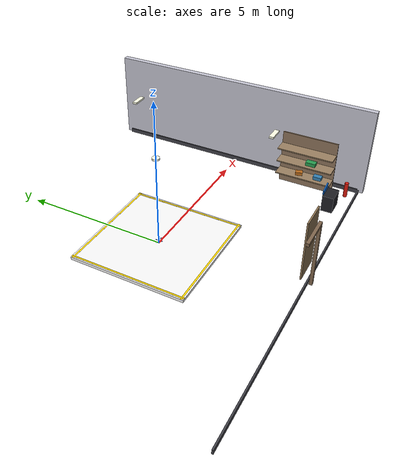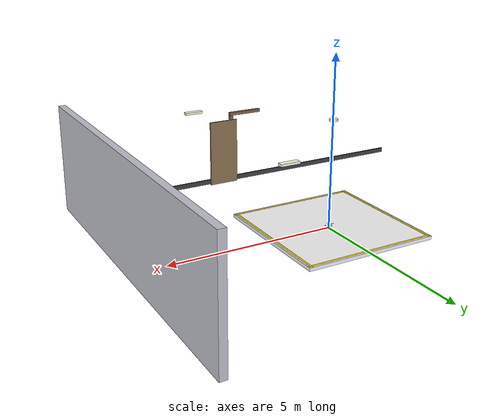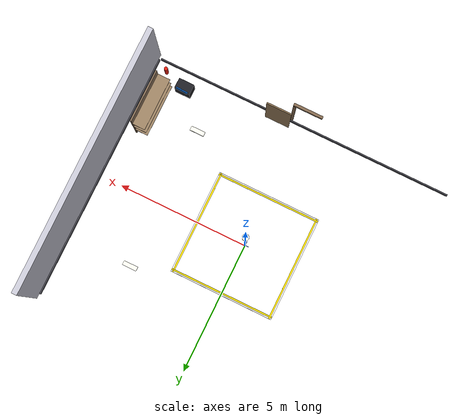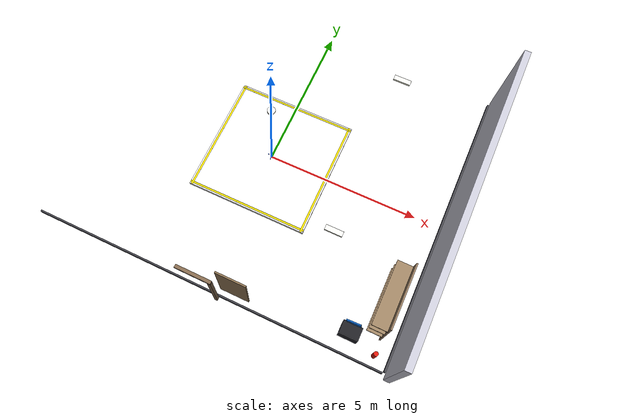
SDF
<sdf version="1.9">
 <world name="indoor_robotics_lab">
  <model name="wall_east">
   <static>true</static>
   <pose>6.0 0 1.6 0 0 0</pose>
   <link name="l">
    <collision name="c"><geometry><box><size>0.2 10 3.2</size></box></geometry></collision>
    <visual name="v">
     <geometry><box><size>0.2 10 3.2</size></box></geometry>
     <material><ambient>0.75 0.75 0.80 1</ambient><diffuse>0.77 0.77 0.82 1</diffuse></material>
    </visual>
   </link>
  </model>
  <model name="baseboard_south">
   <static>true</static>
   <pose>0 -4.85 0.075 0 0 0</pose>
   <link name="l">
    <visual name="v">
     <geometry><box><size>11.6 0.05 0.15</size></box></geometry>
     <material><ambient>0.25 0.25 0.28 1</ambient><diffuse>0.25 0.25 0.28 1</diffuse></material>
    </visual>
   </link>
  </model>
  <model name="baseboard_east">
   <static>true</static>
   <pose>5.85 0 0.075 0 0 0</pose>
   <link name="l">
    <visual name="v">
     <geometry><box><size>0.05 9.6 0.15</size></box></geometry>
     <material><ambient>0.25 0.25 0.28 1</ambient><diffuse>0.25 0.25 0.28 1</diffuse></material>
    </visual>
   </link>
  </model>
  <model name="edge_test_platform">
   <static>true</static>
   <pose>0 0 0.05 0 0 0</pose>
   <link name="platform_link">
    <collision name="platform_col">
     <geometry><box><size>4.0 4.0 0.10</size></box></geometry>
     <surface>
      <friction><ode><mu>0.9</mu><mu2>0.9</mu2></ode></friction>
      <bounce><restitution_coefficient>0.0</restitution_coefficient></bounce>
     </surface>
    </collision>
    <visual name="platform_top_vis">
     <geometry><box><size>4.0 4.0 0.10</size></box></geometry>
     <material>
      <ambient>0.96 0.96 0.96 1</ambient>
      <diffuse>0.98 0.98 0.98 1</diffuse>
      <specular>0.4 0.4 0.4 1</specular>
     </material>
    </visual>
    <visual name="stripe_north">
     <pose>0  1.92 0.052 0 0 0</pose>
     <geometry><box><size>4.0 0.06 0.001</size></box></geometry>
     <material><ambient>1 0.8 0 1</ambient><diffuse>1 0.85 0 1</diffuse></material>
    </visual>
    <visual name="stripe_south">
     <pose>0 -1.92 0.052 0 0 0</pose>
     <geometry><box><size>4.0 0.06 0.001</size></box></geometry>
     <material><ambient>1 0.8 0 1</ambient><diffuse>1 0.85 0 1</diffuse></material>
    </visual>
    <visual name="stripe_east">
     <pose>1.92 0 0.052 0 0 0</pose>
     <geometry><box><size>0.06 4.0 0.001</size></box></geometry>
     <material><ambient>1 0.8 0 1</ambient><diffuse>1 0.85 0 1</diffuse></material>
    </visual>
    <visual name="stripe_west">
     <pose>-1.92 0 0.052 0 0 0</pose>
     <geometry><box><size>0.06 4.0 0.001</size></box></geometry>
     <material><ambient>1 0.8 0 1</ambient><diffuse>1 0.85 0 1</diffuse></material>
    </visual>
    <visual name="center_cross_h">
     <pose>0 0 0.052 0 0 0</pose>
     <geometry><box><size>0.3 0.02 0.001</size></box></geometry>
     <material><ambient>0.2 0.4 1 1</ambient><diffuse>0.2 0.4 1 1</diffuse></material>
    </visual>
    <visual name="center_cross_v">
     <pose>0 0 0.052 0 0 0</pose>
     <geometry><box><size>0.02 0.3 0.001</size></box></geometry>
     <material><ambient>0.2 0.4 1 1</ambient><diffuse>0.2 0.4 1 1</diffuse></material>
    </visual>
   </link>
  </model>
  <model name="shelf_back">
   <static>true</static>
   <pose>5.4 -3.0 1.0 0 0 0</pose>
   <link name="l">
    <collision name="c"><geometry><box><size>0.05 2.0 2.0</size></box></geometry></collision>
    <visual name="v">
     <geometry><box><size>0.05 2.0 2.0</size></box></geometry>
     <material><ambient>0.55 0.45 0.35 1</ambient><diffuse>0.55 0.45 0.35 1</diffuse></material>
    </visual>
   </link>
  </model>
  <model name="shelf_board_1">
   <static>true</static>
   <pose>5.15 -3.0 0.55 0 0 0</pose>
   <link name="l">
    <collision name="c"><geometry><box><size>0.5 2.0 0.04</size></box></geometry></collision>
    <visual name="v">
     <geometry><box><size>0.5 2.0 0.04</size></box></geometry>
     <material><ambient>0.6 0.5 0.38 1</ambient><diffuse>0.6 0.5 0.38 1</diffuse></material>
    </visual>
   </link>
  </model>
  <model name="shelf_board_2">
   <static>true</static>
   <pose>5.15 -3.0 1.05 0 0 0</pose>
   <link name="l">
    <collision name="c"><geometry><box><size>0.5 2.0 0.04</size></box></geometry></collision>
    <visual name="v">
     <geometry><box><size>0.5 2.0 0.04</size></box></geometry>
     <material><ambient>0.6 0.5 0.38 1</ambient><diffuse>0.6 0.5 0.38 1</diffuse></material>
    </visual>
   </link>
  </model>
  <model name="shelf_board_3">
   <static>true</static>
   <pose>5.15 -3.0 1.55 0 0 0</pose>
   <link name="l">
    <collision name="c"><geometry><box><size>0.5 2.0 0.04</size></box></geometry></collision>
    <visual name="v">
     <geometry><box><size>0.5 2.0 0.04</size></box></geometry>
     <material><ambient>0.6 0.5 0.38 1</ambient><diffuse>0.6 0.5 0.38 1</diffuse></material>
    </visual>
   </link>
  </model>
  <model name="box_shelf_1">
   <static>true</static>
   <pose>5.15 -3.5 0.63 0 0 0</pose>
   <link name="l">
    <collision name="c"><geometry><box><size>0.2 0.3 0.14</size></box></geometry></collision>
    <visual name="v">
     <geometry><box><size>0.2 0.3 0.14</size></box></geometry>
     <material><ambient>0.2 0.5 0.7 1</ambient><diffuse>0.2 0.5 0.7 1</diffuse></material>
    </visual>
   </link>
  </model>
  <model name="box_shelf_2">
   <static>true</static>
   <pose>5.15 -2.8 0.63 0 0 0.3</pose>
   <link name="l">
    <collision name="c"><geometry><box><size>0.18 0.25 0.12</size></box></geometry></collision>
    <visual name="v">
     <geometry><box><size>0.18 0.25 0.12</size></box></geometry>
     <material><ambient>0.7 0.4 0.1 1</ambient><diffuse>0.7 0.4 0.1 1</diffuse></material>
    </visual>
   </link>
  </model>
  <model name="box_shelf_3">
   <static>true</static>
   <pose>5.15 -3.2 1.13 0 0 0</pose>
   <link name="l">
    <collision name="c"><geometry><box><size>0.22 0.35 0.14</size></box></geometry></collision>
    <visual name="v">
     <geometry><box><size>0.22 0.35 0.14</size></box></geometry>
     <material><ambient>0.15 0.6 0.3 1</ambient><diffuse>0.15 0.6 0.3 1</diffuse></material>
    </visual>
   </link>
  </model>
  <model name="charging_station_base">
   <static>true</static>
   <pose>4.5 -4.2 0.3 0 0 0</pose>
   <link name="l">
    <collision name="c"><geometry><box><size>0.6 0.4 0.6</size></box></geometry></collision>
    <visual name="v">
     <geometry><box><size>0.6 0.4 0.6</size></box></geometry>
     <material><ambient>0.12 0.12 0.14 1</ambient><diffuse>0.12 0.12 0.14 1</diffuse></material>
    </visual>
   </link>
  </model>
  <model name="charging_station_panel">
   <static>true</static>
   <pose>4.5 -4.0 0.7 0 -0.2 0</pose>
   <link name="l">
    <collision name="c"><geometry><box><size>0.45 0.04 0.2</size></box></geometry></collision>
    <visual name="v">
     <geometry><box><size>0.45 0.04 0.2</size></box></geometry>
     <material><ambient>0.05 0.4 0.8 1</ambient><diffuse>0.05 0.4 0.8 1</diffuse></material>
    </visual>
   </link>
  </model>
  <model name="light_fixture_2">
   <static>true</static>
   <pose>3.0 2.5 3.18 0 0 0</pose>
   <link name="l">
    <visual name="v">
     <geometry><box><size>0.5 0.15 0.06</size></box></geometry>
     <material>
      <ambient>1.0 1.0 0.9 1</ambient>
      <diffuse>1.0 1.0 0.9 1</diffuse>
      <emissive>0.9 0.9 0.8 1</emissive>
     </material>
    </visual>
   </link>
  </model>
  <model name="light_fixture_4">
   <static>true</static>
   <pose>3.0 -2.5 3.18 0 0 0</pose>
   <link name="l">
    <visual name="v">
     <geometry><box><size>0.5 0.15 0.06</size></box></geometry>
     <material>
      <ambient>1.0 1.0 0.9 1</ambient>
      <diffuse>1.0 1.0 0.9 1</diffuse>
      <emissive>0.9 0.9 0.8 1</emissive>
     </material>
    </visual>
   </link>
  </model>
  <model name="light_fixture_center">
   <static>true</static>
   <pose>0 0 3.18 0 0 0</pose>
   <link name="l">
    <visual name="v">
     <geometry><cylinder><radius>0.12</radius><length>0.06</length></cylinder></geometry>
     <material>
      <ambient>1.0 1.0 0.9 1</ambient>
      <diffuse>1.0 1.0 0.9 1</diffuse>
      <emissive>1.0 1.0 0.85 1</emissive>
     </material>
    </visual>
   </link>
  </model>
  <model name="fire_extinguisher">
   <static>true</static>
   <pose>5.4 -4.5 0.3 0 0 0</pose>
   <link name="l">
    <collision name="c">
     <geometry><cylinder><radius>0.07</radius><length>0.55</length></cylinder></geometry>
    </collision>
    <visual name="v">
     <geometry><cylinder><radius>0.07</radius><length>0.55</length></cylinder></geometry>
     <material><ambient>0.85 0.1 0.05 1</ambient><diffuse>0.85 0.1 0.05 1</diffuse></material>
    </visual>
   </link>
  </model>
  <model name="door_frame_r">
   <static>true</static>
   <pose>0.5 -4.95 1.1 0 0 0</pose>
   <link name="l">
    <collision name="c"><geometry><box><size>0.1 0.1 2.2</size></box></geometry></collision>
    <visual name="v">
     <geometry><box><size>0.1 0.1 2.2</size></box></geometry>
     <material><ambient>0.5 0.4 0.3 1</ambient><diffuse>0.5 0.4 0.3 1</diffuse></material>
    </visual>
   </link>
  </model>
  <model name="door_frame_top">
   <static>true</static>
   <pose>0 -4.95 2.25 0 0 0</pose>
   <link name="l">
    <collision name="c"><geometry><box><size>1.1 0.1 0.1</size></box></geometry></collision>
    <visual name="v">
     <geometry><box><size>1.1 0.1 0.1</size></box></geometry>
     <material><ambient>0.5 0.4 0.3 1</ambient><diffuse>0.5 0.4 0.3 1</diffuse></material>
    </visual>
   </link>
  </model>
  <model name="door_panel">
   <static>true</static>
   <pose>0.95 -4.62 1.1 0 0 1.5708</pose>
   <link name="l">
    <collision name="c"><geometry><box><size>0.05 0.95 2.1</size></box></geometry></collision>
    <visual name="v">
     <geometry><box><size>0.05 0.95 2.1</size></box></geometry>
     <material>
      <ambient>0.55 0.45 0.32 1</ambient>
      <diffuse>0.55 0.45 0.32 1</diffuse>
      <specular>0.2 0.15 0.1 1</specular>
     </material>
    </visual>
   </link>
  </model>
  <model name="robot_spawn_marker">
   <static>true</static>
   <pose>0 0 0.101 0 0 0</pose>
   <link name="l">
    <visual name="v">
     <geometry><cylinder><radius>0.03</radius><length>0.002</length></cylinder></geometry>
     <material>
      <ambient>0.0 0.8 1.0 0.7</ambient>
      <diffuse>0.0 0.8 1.0 0.7</diffuse>
      <emissive>0.0 0.4 0.6 0.5</emissive>
     </material>
    </visual>
   </link>
  </model>
 </world>
</sdf>
